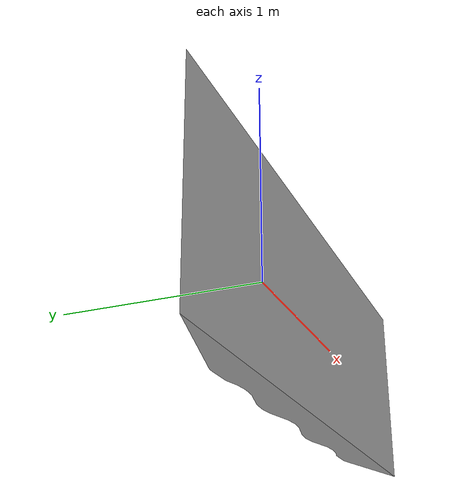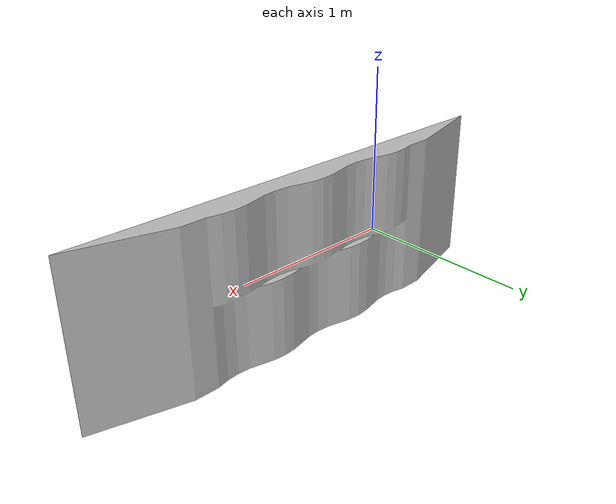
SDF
<?xml version="1.0" ?>
<sdf version="1.5">
  <model name="ramp1">
    <static>true</static>
    <link name="ramp30_link">
      <pose>0 0 0 0 0 0</pose>
      <collision name="collision">
        <geometry>
          <mesh>
            <uri>model://ramp3/meshes/roughTerrain.STL</uri>
            <scale>1 1 1</scale>
          </mesh>
        </geometry>
      </collision>
      <visual name="visual">
        <geometry>
          <mesh>
            <uri>model://ramp3/meshes/roughTerrain.STL</uri>
            <scale>1 1 1</scale>
          </mesh>
        </geometry>
      </visual>
    </link>
  </model>
</sdf>
